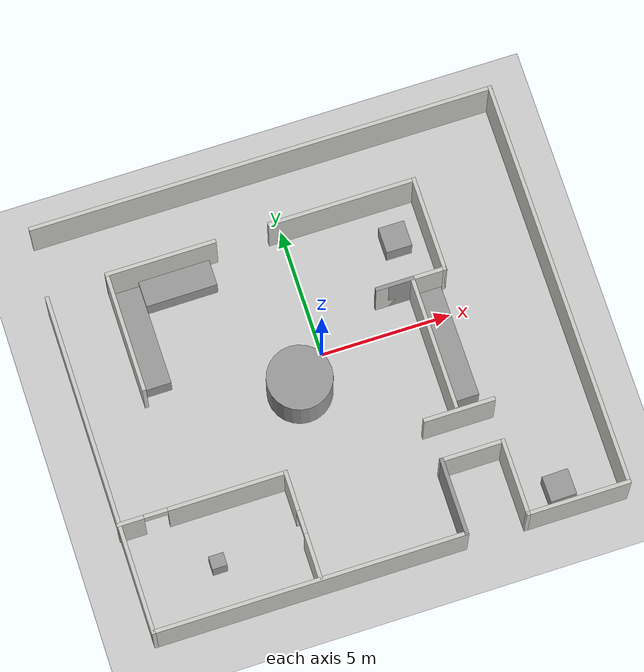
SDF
<sdf version="1.7">
 <world name="default">
  <light name="sun" type="directional">
   <pose>0 0 10 0 -0 0</pose>
   <diffuse>0.8 0.8 0.8 1</diffuse>
   <specular>0.2 0.2 0.2 1</specular>
   <attenuation>
    <range>1000</range>
    <constant>0.9</constant>
    <linear>0.01</linear>
    <quadratic>0.001</quadratic>
   </attenuation>
   <direction>-0.5 0.1 -0.9</direction>
   <spot><inner_angle>0</inner_angle><outer_angle>0</outer_angle><falloff>0</falloff></spot>
  </light>
  <model name="ground_plane">
   <static>1</static>
   <link name="link">
    <collision name="collision">
     <geometry><plane><normal>0 0 1</normal><size>100 100</size></plane></geometry>
     <surface>
      <contact><collide_bitmask>65535</collide_bitmask></contact>
      <friction><ode><mu>100</mu><mu2>50</mu2></ode></friction>
     </surface>
    </collision>
    <visual name="visual">
     <cast_shadows>0</cast_shadows>
     <geometry><plane><normal>0 0 1</normal><size>100 100</size></plane></geometry>
     <material>
      <script><uri>file://media/materials/scripts/gazebo.material</uri><name>Gazebo/Grey</name></script>
     </material>
    </visual>
   </link>
  </model>
  <gravity>0 0 -9.8</gravity>
  <magnetic_field>6e-06 2.3e-05 -4.2e-05</magnetic_field>
  <atmosphere type="adiabatic"/>
  <physics type="ode">
   <max_step_size>0.001</max_step_size>
   <real_time_factor>1</real_time_factor>
   <real_time_update_rate>1000</real_time_update_rate>
  </physics>
  <scene><ambient>0.4 0.4 0.4 1</ambient><background>0.7 0.7 0.7 1</background><shadows>1</shadows></scene>
  <audio><device>default</device></audio>
  <spherical_coordinates>
   <surface_model>EARTH_WGS84</surface_model>
   <latitude_deg>0</latitude_deg>
   <longitude_deg>0</longitude_deg>
   <elevation>0</elevation>
   <heading_deg>0</heading_deg>
  </spherical_coordinates>
  <model name="PJ_NO2.world">
   <pose>-0.12686 -0.68044 0 0 -0 0</pose>
   <link name="Wall_10">
    <collision name="Wall_10_Collision">
     <geometry><box><size>2.5 0.15 2.5</size></box></geometry>
     <pose>0 0 1.25 0 -0 0</pose>
    </collision>
    <visual name="Wall_10_Visual">
     <pose>0 0 1.25 0 -0 0</pose>
     <geometry><box><size>2.5 0.15 2.5</size></box></geometry>
     <material>
      <script><uri>file://media/materials/scripts/gazebo.material</uri><name>Gazebo/CeilingTiled</name></script>
      <ambient>1 1 1 1</ambient>
     </material>
     <meta><layer>0</layer></meta>
    </visual>
    <pose>4.0165 -5.075 0 0 -0 3.14159</pose>
   </link>
   <link name="Wall_11">
    <collision name="Wall_11_Collision">
     <geometry><box><size>3 0.15 2.5</size></box></geometry>
     <pose>0 0 1.25 0 -0 0</pose>
    </collision>
    <visual name="Wall_11_Visual">
     <pose>0 0 1.25 0 -0 0</pose>
     <geometry><box><size>3 0.15 2.5</size></box></geometry>
     <material>
      <script><uri>file://media/materials/scripts/gazebo.material</uri><name>Gazebo/Grey</name></script>
      <ambient>1 1 1 1</ambient>
     </material>
     <meta><layer>0</layer></meta>
    </visual>
    <pose>2.8415 -6.5 0 0 -0 -1.5708</pose>
   </link>
   <link name="Wall_12">
    <collision name="Wall_12_Collision">
     <geometry><box><size>12 0.15 2.5</size></box></geometry>
     <pose>0 0 1.25 0 -0 0</pose>
    </collision>
    <visual name="Wall_12_Visual">
     <pose>0 0 1.25 0 -0 0</pose>
     <geometry><box><size>12 0.15 2.5</size></box></geometry>
     <material>
      <script><uri>file://media/materials/scripts/gazebo.material</uri><name>Gazebo/CeilingTiled</name></script>
      <ambient>1 1 1 1</ambient>
     </material>
     <meta><layer>0</layer></meta>
    </visual>
    <pose>-3.0835 -7.925 0 0 -0 3.14159</pose>
   </link>
   <link name="Wall_13">
    <collision name="Wall_13_Collision">
     <geometry><box><size>13.25 0.15 2.5</size></box></geometry>
     <pose>0 0 1.25 0 -0 0</pose>
    </collision>
    <visual name="Wall_13_Visual">
     <pose>0 0 1.25 0 -0 0</pose>
     <geometry><box><size>13.25 0.15 2.5</size></box></geometry>
     <material>
      <script><uri>file://media/materials/scripts/gazebo.material</uri><name>Gazebo/CeilingTiled</name></script>
      <ambient>1 1 1 1</ambient>
     </material>
     <meta><layer>0</layer></meta>
    </visual>
    <pose>-9.0085 -1.375 0 0 -0 1.5708</pose>
   </link>
   <link name="Wall_15">
    <collision name="Wall_15_Collision">
     <geometry><box><size>4.7128 0.15 2.5</size></box></geometry>
     <pose>0 0 1.25 0 -0 0</pose>
    </collision>
    <visual name="Wall_15_Visual">
     <pose>0 0 1.25 0 -0 0</pose>
     <geometry><box><size>4.7128 0.15 2.5</size></box></geometry>
     <material>
      <script><uri>file://media/materials/scripts/gazebo.material</uri><name>Gazebo/CeilingTiled</name></script>
      <ambient>1 1 1 1</ambient>
     </material>
     <meta><layer>0</layer></meta>
    </visual>
    <pose>-6.6585 3.106 0 0 -0 -1.5708</pose>
   </link>
   <link name="Wall_17">
    <collision name="Wall_17_Collision">
     <geometry><box><size>2.75 0.15 2.5</size></box></geometry>
     <pose>0 0 1.25 0 -0 0</pose>
    </collision>
    <visual name="Wall_17_Visual">
     <pose>0 0 1.25 0 -0 0</pose>
     <geometry><box><size>2.75 0.15 2.5</size></box></geometry>
     <material>
      <script><uri>file://media/materials/scripts/gazebo.material</uri><name>Gazebo/CeilingTiled</name></script>
      <ambient>1 1 1 1</ambient>
     </material>
     <meta><layer>0</layer></meta>
    </visual>
    <pose>4.0475 -3.471 0 0 -0 0</pose>
   </link>
   <link name="Wall_19">
    <collision name="Wall_19_Collision">
     <geometry><box><size>5.25 0.15 2.5</size></box></geometry>
     <pose>0 0 1.25 0 -0 0</pose>
    </collision>
    <visual name="Wall_19_Visual">
     <pose>0 0 1.25 0 -0 0</pose>
     <geometry><box><size>5.25 0.15 2.5</size></box></geometry>
     <material>
      <script><uri>file://media/materials/scripts/gazebo.material</uri><name>Gazebo/CeilingTiled</name></script>
      <ambient>1 1 1 1</ambient>
     </material>
     <meta><layer>0</layer></meta>
    </visual>
    <pose>3.9785 -0.761 0 0 -0 1.5708</pose>
   </link>
   <link name="Wall_20">
    <collision name="Wall_20_Collision">
     <geometry><box><size>1.5 0.15 2.5</size></box></geometry>
     <pose>0 0 1.25 0 -0 0</pose>
    </collision>
    <visual name="Wall_20_Visual">
     <pose>0 0 1.25 0 -0 0</pose>
     <geometry><box><size>1.5 0.15 2.5</size></box></geometry>
     <material>
      <script><uri>file://media/materials/scripts/gazebo.material</uri><name>Gazebo/Grey</name></script>
      <ambient>1 1 1 1</ambient>
     </material>
     <meta><layer>0</layer></meta>
    </visual>
    <pose>3.3035 1.789 0 0 -0 3.14159</pose>
   </link>
   <link name="Wall_21">
    <collision name="Wall_21_Collision">
     <geometry><box><size>2.75 0.15 2.5</size></box></geometry>
     <pose>0 0 1.25 0 -0 0</pose>
    </collision>
    <visual name="Wall_21_Visual">
     <pose>0 0 1.25 0 -0 0</pose>
     <geometry><box><size>2.75 0.15 2.5</size></box></geometry>
     <material>
      <script><uri>file://media/materials/scripts/gazebo.material</uri><name>Gazebo/CeilingTiled</name></script>
      <ambient>1 1 1 1</ambient>
     </material>
     <meta><layer>0</layer></meta>
    </visual>
    <pose>3.9285 1.789 0 0 -0 0</pose>
   </link>
   <link name="Wall_23">
    <collision name="Wall_23_Collision">
     <geometry><box><size>4.27634 0.15 2.5</size></box></geometry>
     <pose>0 0 1.25 0 -0 0</pose>
    </collision>
    <visual name="Wall_23_Visual">
     <pose>0 0 1.25 0 -0 0</pose>
     <geometry><box><size>4.27634 0.15 2.5</size></box></geometry>
     <material>
      <script><uri>file://media/materials/scripts/gazebo.material</uri><name>Gazebo/CeilingTiled</name></script>
      <ambient>1 1 1 1</ambient>
     </material>
     <meta><layer>0</layer></meta>
    </visual>
    <pose>-4.5955 5.387 0 0 -0 0</pose>
   </link>
   <link name="Wall_25">
    <collision name="Wall_25_Collision">
     <geometry><box><size>3.75 0.15 2.5</size></box></geometry>
     <pose>0 0 1.25 0 -0 0</pose>
    </collision>
    <visual name="Wall_25_Visual">
     <pose>0 0 1.25 0 -0 0</pose>
     <geometry><box><size>3.75 0.15 2.5</size></box></geometry>
     <material>
      <script><uri>file://media/materials/scripts/gazebo.material</uri><name>Gazebo/CeilingTiled</name></script>
      <ambient>1 1 1 1</ambient>
     </material>
     <meta><layer>0</layer></meta>
    </visual>
    <pose>5.2285 3.589 0 0 -0 1.5708</pose>
   </link>
   <link name="Wall_26">
    <collision name="Wall_26_Collision">
     <geometry><box><size>5.75 0.15 2.5</size></box></geometry>
     <pose>0 0 1.25 0 -0 0</pose>
    </collision>
    <visual name="Wall_26_Visual">
     <pose>0 0 1.25 0 -0 0</pose>
     <geometry><box><size>5.75 0.15 2.5</size></box></geometry>
     <material>
      <script><uri>file://media/materials/scripts/gazebo.material</uri><name>Gazebo/CeilingTiled</name></script>
      <ambient>1 1 1 1</ambient>
     </material>
     <meta><layer>0</layer></meta>
    </visual>
    <pose>2.4285 5.389 0 0 -0 3.14159</pose>
   </link>
   <link name="Wall_30">
    <pose>-5.8665 -3.766 0 0 -0 0</pose>
    <visual name="Wall_30_Visual_0">
     <pose>-2.73259 0 1.25 0 -0 0</pose>
     <geometry><box><size>1.03481 0.15 2.5</size></box></geometry>
     <material>
      <script><uri>file://media/materials/scripts/gazebo.material</uri><name>Gazebo/CeilingTiled</name></script>
      <ambient>1 1 1 1</ambient>
     </material>
     <meta><layer>0</layer></meta>
    </visual>
    <collision name="Wall_30_Collision_0">
     <geometry><box><size>1.03481 0.15 2.5</size></box></geometry>
     <pose>-2.73259 0 1.25 0 -0 0</pose>
    </collision>
    <visual name="Wall_30_Visual_1">
     <pose>0.967405 0 1.25 0 -0 0</pose>
     <geometry><box><size>4.56519 0.15 2.5</size></box></geometry>
     <material>
      <script><uri>file://media/materials/scripts/gazebo.material</uri><name>Gazebo/CeilingTiled</name></script>
      <ambient>1 1 1 1</ambient>
     </material>
     <meta><layer>0</layer></meta>
    </visual>
    <collision name="Wall_30_Collision_1">
     <geometry><box><size>4.56519 0.15 2.5</size></box></geometry>
     <pose>0.967405 0 1.25 0 -0 0</pose>
    </collision>
    <visual name="Wall_30_Visual_2">
     <pose>-1.76519 0 2.25 0 -0 0</pose>
     <geometry><box><size>0.9 0.15 0.5</size></box></geometry>
     <material>
      <script><uri>file://media/materials/scripts/gazebo.material</uri><name>Gazebo/CeilingTiled</name></script>
      <ambient>1 1 1 1</ambient>
     </material>
     <meta><layer>0</layer></meta>
    </visual>
    <collision name="Wall_30_Collision_2">
     <geometry><box><size>0.9 0.15 0.5</size></box></geometry>
     <pose>-1.76519 0 2.25 0 -0 0</pose>
    </collision>
   </link>
   <link name="Wall_31">
    <pose>-2.6915 -5.816 0 0 -0 -1.5708</pose>
    <visual name="Wall_31_Visual_0">
     <pose>-1.34159 0 1.25 0 -0 0</pose>
     <geometry><box><size>1.56681 0.15 2.5</size></box></geometry>
     <material>
      <script><uri>file://media/materials/scripts/gazebo.material</uri><name>Gazebo/CeilingTiled</name></script>
      <ambient>1 1 1 1</ambient>
     </material>
     <meta><layer>0</layer></meta>
    </visual>
    <collision name="Wall_31_Collision_0">
     <geometry><box><size>1.56681 0.15 2.5</size></box></geometry>
     <pose>-1.34159 0 1.25 0 -0 0</pose>
    </collision>
    <visual name="Wall_31_Visual_1">
     <pose>1.23341 0 1.25 0 -0 0</pose>
     <geometry><box><size>1.78319 0.15 2.5</size></box></geometry>
     <material>
      <script><uri>file://media/materials/scripts/gazebo.material</uri><name>Gazebo/CeilingTiled</name></script>
      <ambient>1 1 1 1</ambient>
     </material>
     <meta><layer>0</layer></meta>
    </visual>
    <collision name="Wall_31_Collision_1">
     <geometry><box><size>1.78319 0.15 2.5</size></box></geometry>
     <pose>1.23341 0 1.25 0 -0 0</pose>
    </collision>
    <visual name="Wall_31_Visual_2">
     <pose>-0.108186 0 2.25 0 -0 0</pose>
     <geometry><box><size>0.9 0.15 0.5</size></box></geometry>
     <material>
      <script><uri>file://media/materials/scripts/gazebo.material</uri><name>Gazebo/CeilingTiled</name></script>
      <ambient>1 1 1 1</ambient>
     </material>
     <meta><layer>0</layer></meta>
    </visual>
    <collision name="Wall_31_Collision_2">
     <geometry><box><size>0.9 0.15 0.5</size></box></geometry>
     <pose>-0.108186 0 2.25 0 -0 0</pose>
    </collision>
   </link>
   <link name="Wall_6">
    <collision name="Wall_6_Collision">
     <geometry><box><size>18 0.15 2.5</size></box></geometry>
     <pose>0 0 1.25 0 -0 0</pose>
    </collision>
    <visual name="Wall_6_Visual">
     <pose>0 0 1.25 0 -0 0</pose>
     <geometry><box><size>18 0.15 2.5</size></box></geometry>
     <material>
      <script><uri>file://media/materials/scripts/gazebo.material</uri><name>Gazebo/CeilingTiled</name></script>
      <ambient>1 1 1 1</ambient>
     </material>
     <meta><layer>0</layer></meta>
    </visual>
    <pose>0.116499 7.925 0 0 -0 0</pose>
   </link>
   <link name="Wall_7">
    <collision name="Wall_7_Collision">
     <geometry><box><size>16 0.15 2.5</size></box></geometry>
     <pose>0 0 1.25 0 -0 0</pose>
    </collision>
    <visual name="Wall_7_Visual">
     <pose>0 0 1.25 0 -0 0</pose>
     <geometry><box><size>16 0.15 2.5</size></box></geometry>
     <material>
      <script><uri>file://media/materials/scripts/gazebo.material</uri><name>Gazebo/CeilingTiled</name></script>
      <ambient>1 1 1 1</ambient>
     </material>
     <meta><layer>0</layer></meta>
    </visual>
    <pose>9.0415 0 0 0 -0 -1.5708</pose>
   </link>
   <link name="Wall_8">
    <collision name="Wall_8_Collision">
     <geometry><box><size>4 0.15 2.5</size></box></geometry>
     <pose>0 0 1.25 0 -0 0</pose>
    </collision>
    <visual name="Wall_8_Visual">
     <pose>0 0 1.25 0 -0 0</pose>
     <geometry><box><size>4 0.15 2.5</size></box></geometry>
     <material>
      <script><uri>file://media/materials/scripts/gazebo.material</uri><name>Gazebo/CeilingTiled</name></script>
      <ambient>1 1 1 1</ambient>
     </material>
     <meta><layer>0</layer></meta>
    </visual>
    <pose>7.1165 -7.925 0 0 -0 3.14159</pose>
   </link>
   <link name="Wall_9">
    <collision name="Wall_9_Collision">
     <geometry><box><size>3 0.15 2.5</size></box></geometry>
     <pose>0 0 1.25 0 -0 0</pose>
    </collision>
    <visual name="Wall_9_Visual">
     <pose>0 0 1.25 0 -0 0</pose>
     <geometry><box><size>3 0.15 2.5</size></box></geometry>
     <material>
      <script><uri>file://media/materials/scripts/gazebo.material</uri><name>Gazebo/CeilingTiled</name></script>
      <ambient>1 1 1 1</ambient>
     </material>
     <meta><layer>0</layer></meta>
    </visual>
    <pose>5.1915 -6.5 0 0 -0 1.5708</pose>
   </link>
   <static>1</static>
  </model>
  <model name="unit_box_1">
   <pose>-6.08535 -6.49862 0.503225 0 -0 0.000513</pose>
   <link name="link">
    <inertial>
     <mass>1</mass>
     <inertia>
      <ixx>0.166667</ixx>
      <ixy>0</ixy>
      <ixz>0</ixz>
      <iyy>0.166667</iyy>
      <iyz>0</iyz>
      <izz>0.166667</izz>
     </inertia>
    </inertial>
    <collision name="collision"><geometry><box><size>0.568099 0.507584 1.00645</size></box></geometry></collision>
    <visual name="visual">
     <geometry><box><size>0.568099 0.507584 1.00645</size></box></geometry>
     <material>
      <script><name>Gazebo/Grey</name><uri>file://media/materials/scripts/gazebo.material</uri></script>
     </material>
    </visual>
   </link>
  </model>
  <model name="unit_box_2">
   <pose>3.91758 3.24785 0.5 -0 -0 -0.002714</pose>
   <link name="link">
    <inertial>
     <mass>1</mass>
     <inertia>
      <ixx>0.166667</ixx>
      <ixy>0</ixy>
      <ixz>0</ixz>
      <iyy>0.166667</iyy>
      <iyz>0</iyz>
      <izz>0.166667</izz>
     </inertia>
    </inertial>
    <collision name="collision"><geometry><box><size>1 1 1</size></box></geometry></collision>
    <visual name="visual">
     <geometry><box><size>1 1 1</size></box></geometry>
     <material>
      <script><name>Gazebo/Grey</name><uri>file://media/materials/scripts/gazebo.material</uri></script>
     </material>
    </visual>
   </link>
  </model>
  <model name="unit_box_4">
   <pose>6.66587 -7.64529 0.499995 0 1e-05 0.022161</pose>
   <link name="link">
    <inertial>
     <mass>1</mass>
     <inertia>
      <ixx>0.166667</ixx>
      <ixy>0</ixy>
      <ixz>0</ixz>
      <iyy>0.166667</iyy>
      <iyz>0</iyz>
      <izz>0.166667</izz>
     </inertia>
    </inertial>
    <collision name="collision"><geometry><box><size>1 1 1</size></box></geometry></collision>
    <visual name="visual">
     <geometry><box><size>1 1 1</size></box></geometry>
     <material>
      <script><name>Gazebo/Grey</name><uri>file://media/materials/scripts/gazebo.material</uri></script>
     </material>
    </visual>
   </link>
  </model>
  <model name="base">
   <model name="base"><static>0</static><pose>3e-06 -4e-06 0 0 -0 0</pose></model>
   <static>0</static>
   <pose>-1.35765 -1.30774 0 0 -0 0</pose>
  </model>
  <model name="unit_box">
   <pose>-6.20196 2.38777 0.499998 0 -5e-06 0.004288</pose>
   <link name="link">
    <inertial>
     <mass>1</mass>
     <inertia>
      <ixx>0.166667</ixx>
      <ixy>0</ixy>
      <ixz>0</ixz>
      <iyy>0.166667</iyy>
      <iyz>0</iyz>
      <izz>0.166667</izz>
     </inertia>
    </inertial>
    <collision name="collision"><geometry><box><size>1 3.89183 1</size></box></geometry></collision>
    <visual name="visual">
     <geometry><box><size>1 3.89183 1</size></box></geometry>
     <material>
      <script><name>Gazebo/Grey</name><uri>file://media/materials/scripts/gazebo.material</uri></script>
     </material>
    </visual>
   </link>
  </model>
  <model name="unit_box_0">
   <pose>-4.32024 4.01023 0.49989 0 -8e-05 0.004046</pose>
   <link name="link">
    <inertial>
     <mass>1</mass>
     <inertia>
      <ixx>0.166667</ixx>
      <ixy>0</ixy>
      <ixz>0</ixz>
      <iyy>0.166667</iyy>
      <iyz>0</iyz>
      <izz>0.166667</izz>
     </inertia>
    </inertial>
    <collision name="collision"><geometry><box><size>2.75249 1 1</size></box></geometry></collision>
    <visual name="visual">
     <geometry><box><size>2.75249 1 1</size></box></geometry>
     <material>
      <script><name>Gazebo/Grey</name><uri>file://media/materials/scripts/gazebo.material</uri></script>
     </material>
    </visual>
   </link>
  </model>
  <model name="unit_box_3">
   <pose>4.44755 -1.29543 0.499999 0 2e-06 0.007855</pose>
   <link name="link">
    <inertial>
     <mass>1</mass>
     <inertia>
      <ixx>0.166667</ixx>
      <ixy>0</ixy>
      <ixz>0</ixz>
      <iyy>0.166667</iyy>
      <iyz>0</iyz>
      <izz>0.166667</izz>
     </inertia>
    </inertial>
    <collision name="collision"><geometry><box><size>1 4.34696 1</size></box></geometry></collision>
    <visual name="visual">
     <geometry><box><size>1 4.34696 1</size></box></geometry>
     <material>
      <script><name>Gazebo/Grey</name><uri>file://media/materials/scripts/gazebo.material</uri></script>
     </material>
    </visual>
   </link>
  </model>
  <model name="unit_cylinder">
   <pose>-1.20388 -1.0795 1.00146 0 -0 0.002991</pose>
   <link name="link">
    <inertial>
     <mass>1</mass>
     <inertia><ixx>0.145833</ixx><ixy>0</ixy><ixz>0</ixz><iyy>0.145833</iyy><iyz>0</iyz><izz>0.125</izz></inertia>
    </inertial>
    <collision name="collision">
     <geometry><cylinder><radius>1.24036</radius><length>2.00293</length></cylinder></geometry>
    </collision>
    <visual name="visual">
     <geometry><cylinder><radius>1.24036</radius><length>2.00293</length></cylinder></geometry>
     <material>
      <script><name>Gazebo/Grey</name><uri>file://media/materials/scripts/gazebo.material</uri></script>
     </material>
    </visual>
   </link>
  </model>
 </world>
</sdf>
